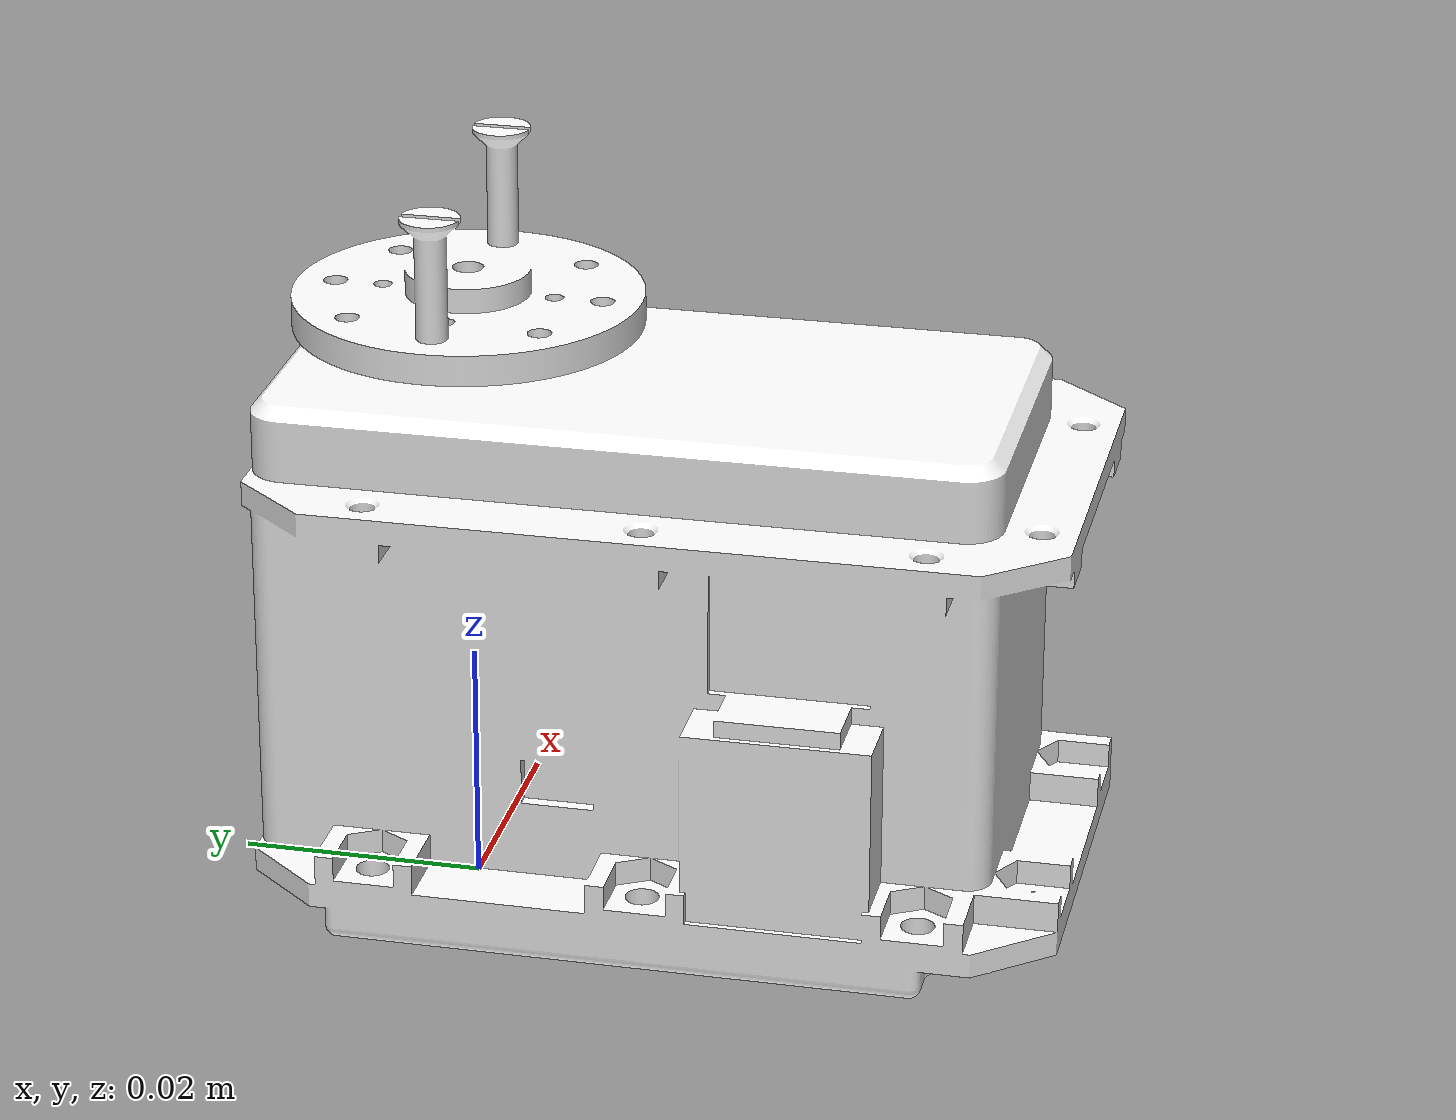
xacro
<?xml version="1.0" ?>

<robot name="mrm" xmlns:xacro="http://www.ros.org/wiki/xacro">

  <!-- BGN - Include -->
  <xacro:include filename="$(find servo)/urdf/links_joints.xacro" />
  <!-- END - Include -->

    <material name="white">
    <color rgba="1 1 1 1"/>
  </material>

  <!-- BGN - Robot description -->
  <m_link_mesh name="Servo"
              origin_rpy="1.57 0 0" origin_xyz="0 0 0"
              mass="157.633"
              ixx="13.235" ixy="0" ixz="0"
              iyy="13.235" iyz="0"
              izz="9.655"
              meshfile="package://servo/meshes/servo.stl"
              meshscale="0.001 0.001 0.001" />

  <m_joint name="Rotate" type="revolute"
           axis_xyz="0 0 1"
           origin_rpy="0 0 0" origin_xyz="0 0 0.049"
           parent="Servo" child="Horn"
           limit_e="1000" limit_l="-3.14" limit_u="3.14" limit_v="0.5" />

	  <m_link_mesh name="Horn"
              origin_rpy="1.57 0 0" origin_xyz="0 0 0"
              mass="157.633"
              ixx="13.235" ixy="0" ixz="0"
              iyy="13.235" iyz="0"
              izz="9.655"
              meshfile="package://servo/meshes/servohorn.stl"
              meshscale="0.001 0.001 0.001" />

</robot>

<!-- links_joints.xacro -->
<robot xmlns:xacro="http://www.ros.org/wiki/xacro">

  <xacro:macro name="m_joint" params="name type axis_xyz origin_rpy origin_xyz parent child limit_e limit_l limit_u limit_v">
    <joint name="${name}" type="${type}">
      <axis xyz="${axis_xyz}" />
      <limit effort="${limit_e}" lower="${limit_l}" upper="${limit_u}" velocity="${limit_v}" />
      <origin rpy="${origin_rpy}" xyz="${origin_xyz}" />
      <parent link="${parent}" />
      <child link="${child}" />
    </joint>
    <transmission name="trans_${name}">
      <type>transmission_interface/SimpleTransmission</type>
      <joint name="${name}">
        <hardwareInterface>hardware_interface/EffortJointInterface</hardwareInterface>
      </joint>
      <actuator name="motor_${name}">
        <hardwareInterface>hardware_interface/EffortJointInterface</hardwareInterface>
        <mechanicalReduction>1</mechanicalReduction>
      </actuator>
    </transmission>
  </xacro:macro>

  <xacro:macro name="m_link_cylinder" params="name origin_xyz origin_rpy radius length mass ixx ixy ixz iyy iyz izz">
    <link name="${name}">
      <inertial>
        <mass value="${mass}" />
        <origin rpy="${origin_rpy}" xyz="${origin_xyz}" />
        <inertia ixx="${ixx}" ixy="${ixy}" ixz="${ixz}" iyy="${iyy}" iyz="${iyz}" izz="${izz}" />
      </inertial>
      <collision>
        <origin rpy="${origin_rpy}" xyz="${origin_xyz}" />
        <geometry>
          <cylinder radius="${radius}" length="${length}" />
        </geometry>
      </collision>
      <visual>
        <origin rpy="${origin_rpy}" xyz="${origin_xyz}" />
        <geometry>
          <cylinder radius="${radius}" length="${length}" />
        </geometry>
      </visual>
    </link>
  </xacro:macro>

  <xacro:macro name="m_link_box" params="name origin_xyz origin_rpy size mass ixx ixy ixz iyy iyz izz">
    <link name="${name}">
      <inertial>
        <mass value="${mass}" />
        <origin rpy="${origin_rpy}" xyz="${origin_xyz}" />
        <inertia ixx="${ixx}" ixy="${ixy}" ixz="${ixz}" iyy="${iyy}" iyz="${iyz}" izz="${izz}" />
      </inertial>
      <collision>
        <origin rpy="${origin_rpy}" xyz="${origin_xyz}" />
        <geometry>
          <box size="${size}" />
        </geometry>
      </collision>
      <visual>
        <origin rpy="${origin_rpy}" xyz="${origin_xyz}" />
        <geometry>
          <box size="${size}" />
        </geometry>
      </visual>
    </link>
  </xacro:macro>

  <xacro:macro name="m_link_mesh" params="name origin_xyz origin_rpy meshfile meshscale mass ixx ixy ixz iyy iyz izz ">
    <link name="${name}">
      <inertial>
        <mass value="${mass}" />
        <origin rpy="${origin_rpy}" xyz="${origin_xyz}" />
        <inertia ixx="${ixx}" ixy="${ixy}" ixz="${ixz}" iyy="${iyy}" iyz="${iyz}" izz="${izz}" />
      </inertial>
      <collision>
        <origin rpy="${origin_rpy}" xyz="${origin_xyz}" />
        <geometry>
          <mesh filename="${meshfile}" scale="${meshscale}"/>
        </geometry>
      </collision>
      <visual>
        <origin rpy="${origin_rpy}" xyz="${origin_xyz}" />
        <geometry>
          <mesh filename="${meshfile}" scale="${meshscale}"/>
        </geometry>
        <material name="white"/>
      </visual>
    </link>
  </xacro:macro>

</robot>
